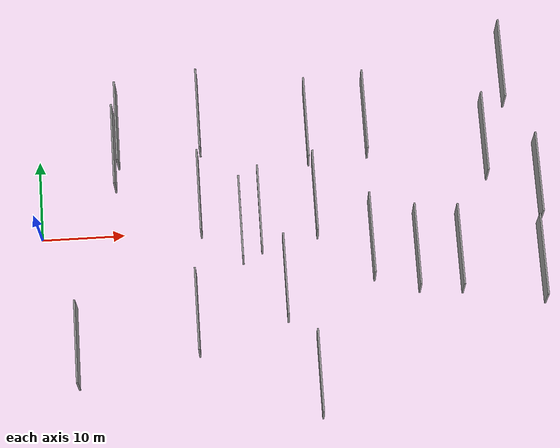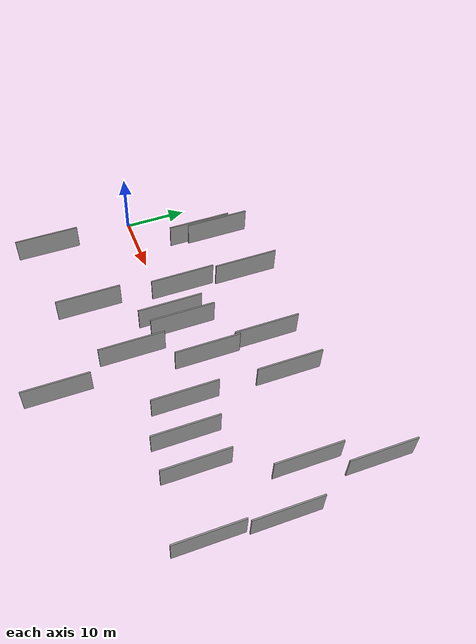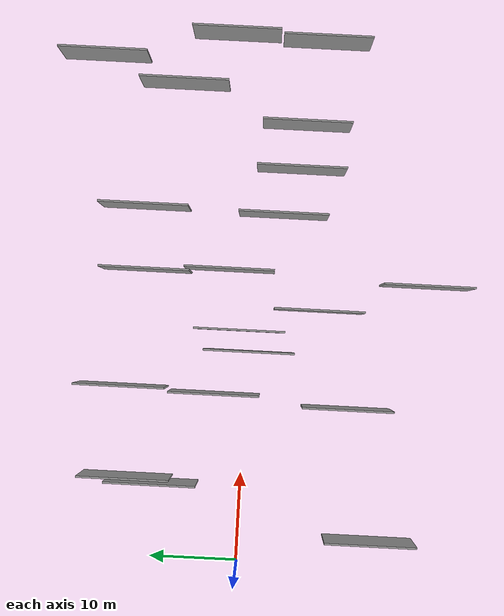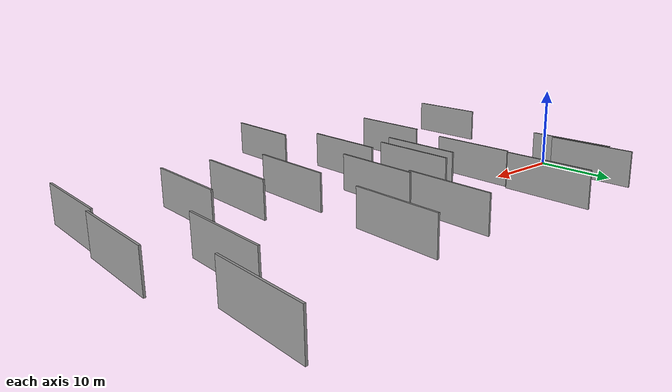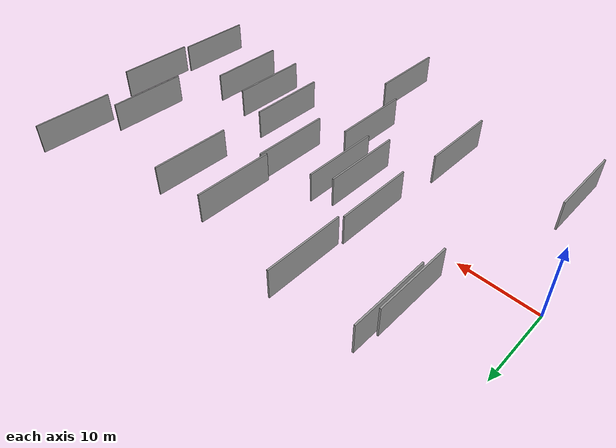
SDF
<sdf version="1.6">
 <world name="default">
  <scene>
   <sky><clouds><speed>12</speed></clouds></sky>
   <ambient>0.4 0.4 0.4 1</ambient>
   <background>0.7 0.7 0.7 1</background>
   <shadows>1</shadows>
  </scene>
  <gravity>0 0 -9.8066</gravity>
  <magnetic_field>6e-06 2.3e-05 -4.2e-05</magnetic_field>
  <physics default="0" name="default_physics" type="ode">
   <ode>
    <solver>
     <type>quick</type>
     <iters>10</iters>
     <sor>1.0</sor>
     <use_dynamic_moi_rescaling>0</use_dynamic_moi_rescaling>
    </solver>
    <constraints>
     <cfm>0</cfm>
     <erp>0.2</erp>
     <contact_max_correcting_vel>100</contact_max_correcting_vel>
     <contact_surface_layer>0.001</contact_surface_layer>
    </constraints>
   </ode>
   <max_step_size>0.004</max_step_size>
   <real_time_factor>1</real_time_factor>
   <real_time_update_rate>250</real_time_update_rate>
  </physics>
  <light name="sun" type="directional">
   <pose>0 0 10 0 0 0</pose>
   <diffuse>0.8 0.8 0.8 1</diffuse>
   <specular>0.2 0.2 0.2 1</specular>
   <attenuation>
    <range>1000</range>
    <constant>0.9</constant>
    <linear>0.01</linear>
    <quadratic>0.001</quadratic>
   </attenuation>
   <direction>-0.5 0.1 -0.9</direction>
  </light>
  <model name="grey_wall_1">
   <static>1</static>
   <pose>9.8182 12.6131 2.5 0.000000 0.000000 1.570796</pose>
   <link name="link">
    <pose>0 0 2.00 0 0 0</pose>
    <collision name="collision"><geometry><box><size>10.00 0.2 4.00</size></box></geometry></collision>
    <visual name="visual">
     <cast_shadows>0</cast_shadows>
     <geometry><box><size>10.00 0.2 4.00</size></box></geometry>
     <material>
      <script>
       <uri>model://grey_wall/materials/scripts</uri>
       <uri>model://grey_wall/materials/textures</uri>
       <name>vrc/grey_wall</name>
      </script>
     </material>
    </visual>
   </link>
  </model>
  <model name="grey_wall_2">
   <static>1</static>
   <pose>29.0717 -7.8530 2.5 0.000000 0.000000 1.570796</pose>
   <link name="link">
    <pose>0 0 2.00 0 0 0</pose>
    <collision name="collision"><geometry><box><size>10.00 0.2 4.00</size></box></geometry></collision>
    <visual name="visual">
     <cast_shadows>0</cast_shadows>
     <geometry><box><size>10.00 0.2 4.00</size></box></geometry>
     <material>
      <script>
       <uri>model://grey_wall/materials/scripts</uri>
       <uri>model://grey_wall/materials/textures</uri>
       <name>vrc/grey_wall</name>
      </script>
     </material>
    </visual>
   </link>
  </model>
  <model name="grey_wall_3">
   <static>1</static>
   <pose>60.1664 2.8333 2.5 0.000000 0.000000 1.570796</pose>
   <link name="link">
    <pose>0 0 2.00 0 0 0</pose>
    <collision name="collision"><geometry><box><size>10.00 0.2 4.00</size></box></geometry></collision>
    <visual name="visual">
     <cast_shadows>0</cast_shadows>
     <geometry><box><size>10.00 0.2 4.00</size></box></geometry>
     <material>
      <script>
       <uri>model://grey_wall/materials/scripts</uri>
       <uri>model://grey_wall/materials/textures</uri>
       <name>vrc/grey_wall</name>
      </script>
     </material>
    </visual>
   </link>
  </model>
  <model name="grey_wall_4">
   <static>1</static>
   <pose>26.4874 0.8231 2.5 0.000000 0.000000 1.570796</pose>
   <link name="link">
    <pose>0 0 2.00 0 0 0</pose>
    <collision name="collision"><geometry><box><size>10.00 0.2 4.00</size></box></geometry></collision>
    <visual name="visual">
     <cast_shadows>0</cast_shadows>
     <geometry><box><size>10.00 0.2 4.00</size></box></geometry>
     <material>
      <script>
       <uri>model://grey_wall/materials/scripts</uri>
       <uri>model://grey_wall/materials/textures</uri>
       <name>vrc/grey_wall</name>
      </script>
     </material>
    </visual>
   </link>
  </model>
  <model name="grey_wall_5">
   <static>1</static>
   <pose>24.1684 -0.3335 2.5 0.000000 0.000000 1.570796</pose>
   <link name="link">
    <pose>0 0 2.00 0 0 0</pose>
    <collision name="collision"><geometry><box><size>10.00 0.2 4.00</size></box></geometry></collision>
    <visual name="visual">
     <cast_shadows>0</cast_shadows>
     <geometry><box><size>10.00 0.2 4.00</size></box></geometry>
     <material>
      <script>
       <uri>model://grey_wall/materials/scripts</uri>
       <uri>model://grey_wall/materials/textures</uri>
       <name>vrc/grey_wall</name>
      </script>
     </material>
    </visual>
   </link>
  </model>
  <model name="grey_wall_6">
   <static>1</static>
   <pose>32.7545 11.6563 2.5 0.000000 0.000000 1.570796</pose>
   <link name="link">
    <pose>0 0 2.00 0 0 0</pose>
    <collision name="collision"><geometry><box><size>10.00 0.2 4.00</size></box></geometry></collision>
    <visual name="visual">
     <cast_shadows>0</cast_shadows>
     <geometry><box><size>10.00 0.2 4.00</size></box></geometry>
     <material>
      <script>
       <uri>model://grey_wall/materials/scripts</uri>
       <uri>model://grey_wall/materials/textures</uri>
       <name>vrc/grey_wall</name>
      </script>
     </material>
    </visual>
   </link>
  </model>
  <model name="grey_wall_7">
   <static>1</static>
   <pose>39.6389 -3.4174 2.5 0.000000 0.000000 1.570796</pose>
   <link name="link">
    <pose>0 0 2.00 0 0 0</pose>
    <collision name="collision"><geometry><box><size>10.00 0.2 4.00</size></box></geometry></collision>
    <visual name="visual">
     <cast_shadows>0</cast_shadows>
     <geometry><box><size>10.00 0.2 4.00</size></box></geometry>
     <material>
      <script>
       <uri>model://grey_wall/materials/scripts</uri>
       <uri>model://grey_wall/materials/textures</uri>
       <name>vrc/grey_wall</name>
      </script>
     </material>
    </visual>
   </link>
  </model>
  <model name="grey_wall_8">
   <static>1</static>
   <pose>18.3992 -11.4477 2.5 0.000000 0.000000 1.570796</pose>
   <link name="link">
    <pose>0 0 2.00 0 0 0</pose>
    <collision name="collision"><geometry><box><size>10.00 0.2 4.00</size></box></geometry></collision>
    <visual name="visual">
     <cast_shadows>0</cast_shadows>
     <geometry><box><size>10.00 0.2 4.00</size></box></geometry>
     <material>
      <script>
       <uri>model://grey_wall/materials/scripts</uri>
       <uri>model://grey_wall/materials/textures</uri>
       <name>vrc/grey_wall</name>
      </script>
     </material>
    </visual>
   </link>
  </model>
  <model name="grey_wall_9">
   <static>1</static>
   <pose>57.0047 17.6856 2.5 0.000000 0.000000 1.570796</pose>
   <link name="link">
    <pose>0 0 2.00 0 0 0</pose>
    <collision name="collision"><geometry><box><size>10.00 0.2 4.00</size></box></geometry></collision>
    <visual name="visual">
     <cast_shadows>0</cast_shadows>
     <geometry><box><size>10.00 0.2 4.00</size></box></geometry>
     <material>
      <script>
       <uri>model://grey_wall/materials/scripts</uri>
       <uri>model://grey_wall/materials/textures</uri>
       <name>vrc/grey_wall</name>
      </script>
     </material>
    </visual>
   </link>
  </model>
  <model name="grey_wall_10">
   <static>1</static>
   <pose>19.7525 13.6398 2.5 0.000000 0.000000 1.570796</pose>
   <link name="link">
    <pose>0 0 2.00 0 0 0</pose>
    <collision name="collision"><geometry><box><size>10.00 0.2 4.00</size></box></geometry></collision>
    <visual name="visual">
     <cast_shadows>0</cast_shadows>
     <geometry><box><size>10.00 0.2 4.00</size></box></geometry>
     <material>
      <script>
       <uri>model://grey_wall/materials/scripts</uri>
       <uri>model://grey_wall/materials/textures</uri>
       <name>vrc/grey_wall</name>
      </script>
     </material>
    </visual>
   </link>
  </model>
  <model name="grey_wall_11">
   <static>1</static>
   <pose>4.0565 -14.4821 2.5 0.000000 0.000000 1.570796</pose>
   <link name="link">
    <pose>0 0 2.00 0 0 0</pose>
    <collision name="collision"><geometry><box><size>10.00 0.2 4.00</size></box></geometry></collision>
    <visual name="visual">
     <cast_shadows>0</cast_shadows>
     <geometry><box><size>10.00 0.2 4.00</size></box></geometry>
     <material>
      <script>
       <uri>model://grey_wall/materials/scripts</uri>
       <uri>model://grey_wall/materials/textures</uri>
       <name>vrc/grey_wall</name>
      </script>
     </material>
    </visual>
   </link>
  </model>
  <model name="grey_wall_12">
   <static>1</static>
   <pose>59.7131 -7.4524 2.5 0.000000 0.000000 1.570796</pose>
   <link name="link">
    <pose>0 0 2.00 0 0 0</pose>
    <collision name="collision"><geometry><box><size>10.00 0.2 4.00</size></box></geometry></collision>
    <visual name="visual">
     <cast_shadows>0</cast_shadows>
     <geometry><box><size>10.00 0.2 4.00</size></box></geometry>
     <material>
      <script>
       <uri>model://grey_wall/materials/scripts</uri>
       <uri>model://grey_wall/materials/textures</uri>
       <name>vrc/grey_wall</name>
      </script>
     </material>
    </visual>
   </link>
  </model>
  <model name="grey_wall_13">
   <static>1</static>
   <pose>39.8935 12.1698 2.5 0.000000 0.000000 1.570796</pose>
   <link name="link">
    <pose>0 0 2.00 0 0 0</pose>
    <collision name="collision"><geometry><box><size>10.00 0.2 4.00</size></box></geometry></collision>
    <visual name="visual">
     <cast_shadows>0</cast_shadows>
     <geometry><box><size>10.00 0.2 4.00</size></box></geometry>
     <material>
      <script>
       <uri>model://grey_wall/materials/scripts</uri>
       <uri>model://grey_wall/materials/textures</uri>
       <name>vrc/grey_wall</name>
      </script>
     </material>
    </visual>
   </link>
  </model>
  <model name="grey_wall_14">
   <static>1</static>
   <pose>32.3688 -19.7855 2.5 0.000000 0.000000 1.570796</pose>
   <link name="link">
    <pose>0 0 2.00 0 0 0</pose>
    <collision name="collision"><geometry><box><size>10.00 0.2 4.00</size></box></geometry></collision>
    <visual name="visual">
     <cast_shadows>0</cast_shadows>
     <geometry><box><size>10.00 0.2 4.00</size></box></geometry>
     <material>
      <script>
       <uri>model://grey_wall/materials/scripts</uri>
       <uri>model://grey_wall/materials/textures</uri>
       <name>vrc/grey_wall</name>
      </script>
     </material>
    </visual>
   </link>
  </model>
  <model name="grey_wall_15">
   <static>1</static>
   <pose>33.2125 2.2762 2.5 0.000000 0.000000 1.570796</pose>
   <link name="link">
    <pose>0 0 2.00 0 0 0</pose>
    <collision name="collision"><geometry><box><size>10.00 0.2 4.00</size></box></geometry></collision>
    <visual name="visual">
     <cast_shadows>0</cast_shadows>
     <geometry><box><size>10.00 0.2 4.00</size></box></geometry>
     <material>
      <script>
       <uri>model://grey_wall/materials/scripts</uri>
       <uri>model://grey_wall/materials/textures</uri>
       <name>vrc/grey_wall</name>
      </script>
     </material>
    </visual>
   </link>
  </model>
  <model name="grey_wall_16">
   <static>1</static>
   <pose>19.3636 3.2728 2.5 0.000000 0.000000 1.570796</pose>
   <link name="link">
    <pose>0 0 2.00 0 0 0</pose>
    <collision name="collision"><geometry><box><size>10.00 0.2 4.00</size></box></geometry></collision>
    <visual name="visual">
     <cast_shadows>0</cast_shadows>
     <geometry><box><size>10.00 0.2 4.00</size></box></geometry>
     <material>
      <script>
       <uri>model://grey_wall/materials/scripts</uri>
       <uri>model://grey_wall/materials/textures</uri>
       <name>vrc/grey_wall</name>
      </script>
     </material>
    </visual>
   </link>
  </model>
  <model name="grey_wall_17">
   <static>1</static>
   <pose>44.9036 -5.1833 2.5 0.000000 0.000000 1.570796</pose>
   <link name="link">
    <pose>0 0 2.00 0 0 0</pose>
    <collision name="collision"><geometry><box><size>10.00 0.2 4.00</size></box></geometry></collision>
    <visual name="visual">
     <cast_shadows>0</cast_shadows>
     <geometry><box><size>10.00 0.2 4.00</size></box></geometry>
     <material>
      <script>
       <uri>model://grey_wall/materials/scripts</uri>
       <uri>model://grey_wall/materials/textures</uri>
       <name>vrc/grey_wall</name>
      </script>
     </material>
    </visual>
   </link>
  </model>
  <model name="grey_wall_18">
   <static>1</static>
   <pose>9.3464 9.6897 2.5 0.000000 0.000000 1.570796</pose>
   <link name="link">
    <pose>0 0 2.00 0 0 0</pose>
    <collision name="collision"><geometry><box><size>10.00 0.2 4.00</size></box></geometry></collision>
    <visual name="visual">
     <cast_shadows>0</cast_shadows>
     <geometry><box><size>10.00 0.2 4.00</size></box></geometry>
     <material>
      <script>
       <uri>model://grey_wall/materials/scripts</uri>
       <uri>model://grey_wall/materials/textures</uri>
       <name>vrc/grey_wall</name>
      </script>
     </material>
    </visual>
   </link>
  </model>
  <model name="grey_wall_19">
   <static>1</static>
   <pose>50.0149 -5.5641 2.5 0.000000 0.000000 1.570796</pose>
   <link name="link">
    <pose>0 0 2.00 0 0 0</pose>
    <collision name="collision"><geometry><box><size>10.00 0.2 4.00</size></box></geometry></collision>
    <visual name="visual">
     <cast_shadows>0</cast_shadows>
     <geometry><box><size>10.00 0.2 4.00</size></box></geometry>
     <material>
      <script>
       <uri>model://grey_wall/materials/scripts</uri>
       <uri>model://grey_wall/materials/textures</uri>
       <name>vrc/grey_wall</name>
      </script>
     </material>
    </visual>
   </link>
  </model>
  <model name="grey_wall_20">
   <static>1</static>
   <pose>54.1189 8.4312 2.5 0.000000 0.000000 1.570796</pose>
   <link name="link">
    <pose>0 0 2.00 0 0 0</pose>
    <collision name="collision"><geometry><box><size>10.00 0.2 4.00</size></box></geometry></collision>
    <visual name="visual">
     <cast_shadows>0</cast_shadows>
     <geometry><box><size>10.00 0.2 4.00</size></box></geometry>
     <material>
      <script>
       <uri>model://grey_wall/materials/scripts</uri>
       <uri>model://grey_wall/materials/textures</uri>
       <name>vrc/grey_wall</name>
      </script>
     </material>
    </visual>
   </link>
  </model>
 </world>
</sdf>
